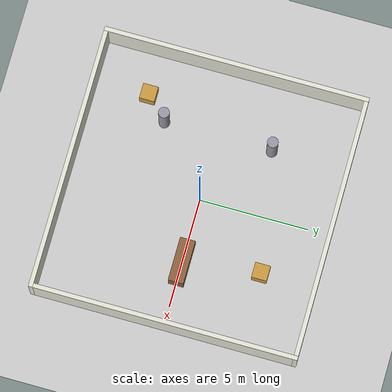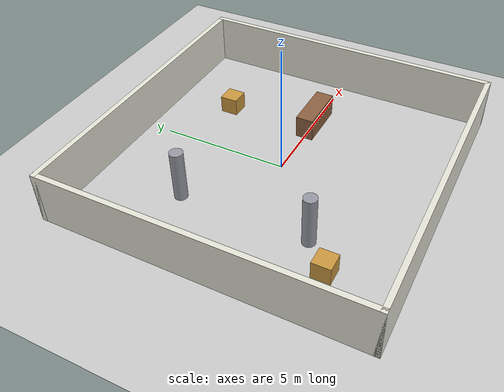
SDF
<?xml version="1.0" ?>
<sdf version="1.6">
  <world name="greeting">

    <physics name="1ms" type="ignored">
      <max_step_size>0.001</max_step_size>
      <real_time_factor>1.0</real_time_factor>
    </physics>

    <plugin filename="gz-sim-physics-system" name="gz::sim::systems::Physics"/>
    <plugin filename="gz-sim-user-commands-system" name="gz::sim::systems::UserCommands"/>
    <plugin filename="gz-sim-scene-broadcaster-system" name="gz::sim::systems::SceneBroadcaster"/>
    <plugin filename="gz-sim-contact-system" name="gz::sim::systems::Contact"/>

    <!-- 雷达（gpu_lidar）必需；render_engine 用 ogre2 -->
    <plugin filename="gz-sim-sensors-system" name="gz::sim::systems::Sensors">
      <render_engine>ogre2</render_engine>
    </plugin>

    <scene>
      <ambient>0.6 0.6 0.6 1</ambient>
      <background>0.7 0.8 0.9 1</background>
      <grid>false</grid>
    </scene>

    <light type="directional" name="sun">
      <cast_shadows>true</cast_shadows>
      <pose>0 0 10 0 0 0</pose>
      <diffuse>0.8 0.8 0.8 1</diffuse>
      <specular>0.2 0.2 0.2 1</specular>
      <attenuation>
        <range>1000</range>
        <constant>0.9</constant>
        <linear>0.01</linear>
        <quadratic>0.001</quadratic>
      </attenuation>
      <direction>-0.5 0.1 -0.9</direction>
    </light>

    <model name="ground_plane">
      <static>true</static>
      <link name="link">
        <collision name="collision">
          <geometry>
            <plane>
              <normal>0 0 1</normal>
              <size>100 100</size>
            </plane>
          </geometry>
        </collision>
        <visual name="visual">
          <geometry>
            <plane>
              <normal>0 0 1</normal>
              <size>100 100</size>
            </plane>
          </geometry>
          <material>
            <ambient>0.8 0.8 0.8 1</ambient>
            <diffuse>0.8 0.8 0.8 1</diffuse>
            <specular>0.2 0.2 0.2 1</specular>
          </material>
        </visual>
      </link>
    </model>

    <!-- 12 x 12 m 房间：四面墙，厚 0.2，高 2.0 -->
    <model name="room">
      <static>true</static>
      <link name="walls">
        <collision name="wall_n_collision">
          <pose>0 6 1.0 0 0 0</pose>
          <geometry><box><size>12.2 0.2 2.0</size></box></geometry>
        </collision>
        <visual name="wall_n_visual">
          <pose>0 6 1.0 0 0 0</pose>
          <geometry><box><size>12.2 0.2 2.0</size></box></geometry>
          <material>
            <ambient>0.9 0.9 0.85 1</ambient>
            <diffuse>0.9 0.9 0.85 1</diffuse>
          </material>
        </visual>

        <collision name="wall_s_collision">
          <pose>0 -6 1.0 0 0 0</pose>
          <geometry><box><size>12.2 0.2 2.0</size></box></geometry>
        </collision>
        <visual name="wall_s_visual">
          <pose>0 -6 1.0 0 0 0</pose>
          <geometry><box><size>12.2 0.2 2.0</size></box></geometry>
          <material>
            <ambient>0.9 0.9 0.85 1</ambient>
            <diffuse>0.9 0.9 0.85 1</diffuse>
          </material>
        </visual>

        <collision name="wall_e_collision">
          <pose>6 0 1.0 0 0 0</pose>
          <geometry><box><size>0.2 12.2 2.0</size></box></geometry>
        </collision>
        <visual name="wall_e_visual">
          <pose>6 0 1.0 0 0 0</pose>
          <geometry><box><size>0.2 12.2 2.0</size></box></geometry>
          <material>
            <ambient>0.9 0.9 0.85 1</ambient>
            <diffuse>0.9 0.9 0.85 1</diffuse>
          </material>
        </visual>

        <collision name="wall_w_collision">
          <pose>-6 0 1.0 0 0 0</pose>
          <geometry><box><size>0.2 12.2 2.0</size></box></geometry>
        </collision>
        <visual name="wall_w_visual">
          <pose>-6 0 1.0 0 0 0</pose>
          <geometry><box><size>0.2 12.2 2.0</size></box></geometry>
          <material>
            <ambient>0.9 0.9 0.85 1</ambient>
            <diffuse>0.9 0.9 0.85 1</diffuse>
          </material>
        </visual>
      </link>
    </model>

    <!-- 接待台（同时是导航目标点 desk 的参照物） -->
    <model name="reception_desk">
      <static>true</static>
      <pose>3.0 0 0 0 0 0</pose>
      <link name="link">
        <collision name="collision">
          <pose>0 0 0.45 0 0 0</pose>
          <geometry><box><size>2.0 0.7 0.9</size></box></geometry>
        </collision>
        <visual name="visual">
          <pose>0 0 0.45 0 0 0</pose>
          <geometry><box><size>2.0 0.7 0.9</size></box></geometry>
          <material>
            <ambient>0.45 0.3 0.2 1</ambient>
            <diffuse>0.55 0.38 0.25 1</diffuse>
          </material>
        </visual>
      </link>
    </model>

    <!-- 两根立柱：给 SLAM 提供侧向特征 -->
    <model name="pillar_a">
      <static>true</static>
      <pose>-3.0 2.5 0 0 0 0</pose>
      <link name="link">
        <collision name="collision">
          <pose>0 0 1.0 0 0 0</pose>
          <geometry><cylinder><radius>0.25</radius><length>2.0</length></cylinder></geometry>
        </collision>
        <visual name="visual">
          <pose>0 0 1.0 0 0 0</pose>
          <geometry><cylinder><radius>0.25</radius><length>2.0</length></cylinder></geometry>
          <material>
            <ambient>0.6 0.6 0.65 1</ambient>
            <diffuse>0.6 0.6 0.65 1</diffuse>
          </material>
        </visual>
      </link>
    </model>

    <model name="pillar_b">
      <static>true</static>
      <pose>-3.0 -2.5 0 0 0 0</pose>
      <link name="link">
        <collision name="collision">
          <pose>0 0 1.0 0 0 0</pose>
          <geometry><cylinder><radius>0.25</radius><length>2.0</length></cylinder></geometry>
        </collision>
        <visual name="visual">
          <pose>0 0 1.0 0 0 0</pose>
          <geometry><cylinder><radius>0.25</radius><length>2.0</length></cylinder></geometry>
          <material>
            <ambient>0.6 0.6 0.65 1</ambient>
            <diffuse>0.6 0.6 0.65 1</diffuse>
          </material>
        </visual>
      </link>
    </model>

    <!-- 两个方形障碍物 -->
    <model name="crate_a">
      <static>true</static>
      <pose>2.5 3.5 0 0 0 0</pose>
      <link name="link">
        <collision name="collision">
          <pose>0 0 0.35 0 0 0</pose>
          <geometry><box><size>0.7 0.7 0.7</size></box></geometry>
        </collision>
        <visual name="visual">
          <pose>0 0 0.35 0 0 0</pose>
          <geometry><box><size>0.7 0.7 0.7</size></box></geometry>
          <material>
            <ambient>0.7 0.5 0.2 1</ambient>
            <diffuse>0.8 0.6 0.25 1</diffuse>
          </material>
        </visual>
      </link>
    </model>

    <model name="crate_b">
      <static>true</static>
      <pose>-4.0 -3.5 0 0 0 0</pose>
      <link name="link">
        <collision name="collision">
          <pose>0 0 0.35 0 0 0</pose>
          <geometry><box><size>0.7 0.7 0.7</size></box></geometry>
        </collision>
        <visual name="visual">
          <pose>0 0 0.35 0 0 0</pose>
          <geometry><box><size>0.7 0.7 0.7</size></box></geometry>
          <material>
            <ambient>0.7 0.5 0.2 1</ambient>
            <diffuse>0.8 0.6 0.25 1</diffuse>
          </material>
        </visual>
      </link>
    </model>

  </world>
</sdf>
